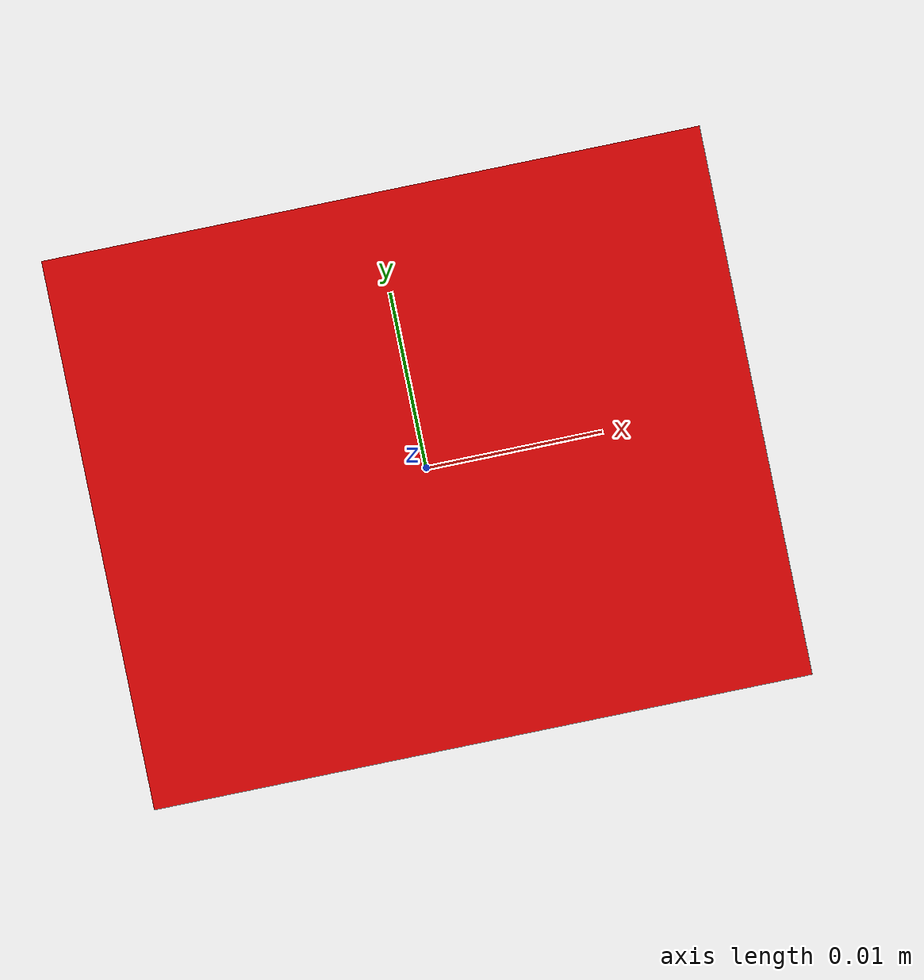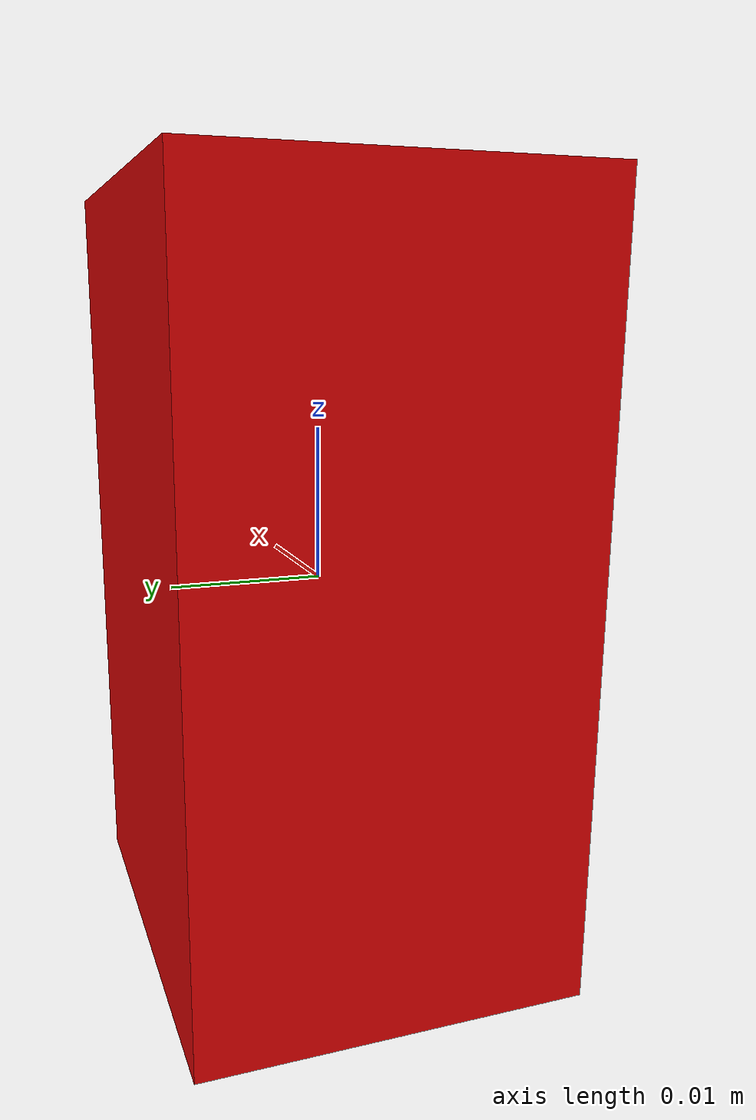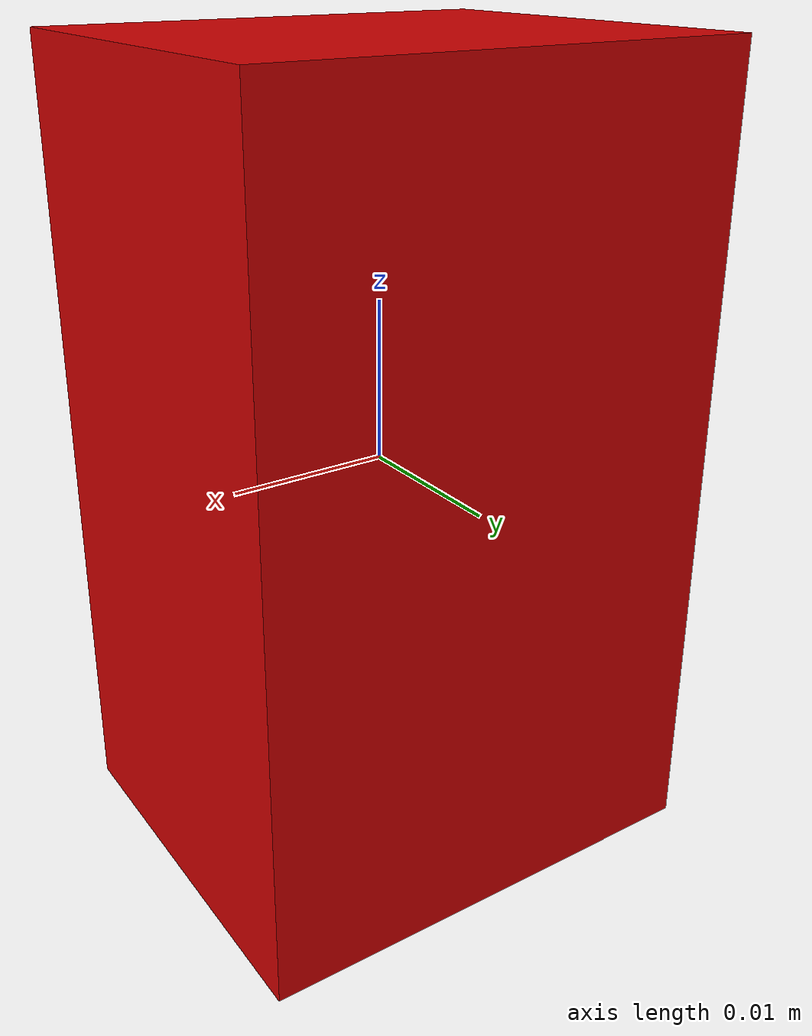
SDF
<?xml version="1.0"?>
<sdf version="1.6">
  <model name="red_block">
    <static>true</static>
    <link name="link">
      <inertial>
        <mass>0.05</mass>
        <inertia>
          <ixx>2.08e-5</ixx><iyy>2.08e-5</iyy><izz>2.08e-5</izz>
          <ixy>0</ixy><ixz>0</ixz><iyz>0</iyz>
        </inertia>
      </inertial>
      <!-- 無碰撞：純視覺 + SetWorldPose 驅動，避免與夾爪物理干擾 -->
      <visual name="vis">
        <geometry><box><size>0.03 0.025 0.05</size></box></geometry>
        <material>
          <ambient>0.8 0.0 0.0 1</ambient>
          <diffuse>0.8 0.0 0.0 1</diffuse>
          <specular>0.1 0.1 0.1 1</specular>
        </material>
      </visual>
    </link>
  </model>
</sdf>
